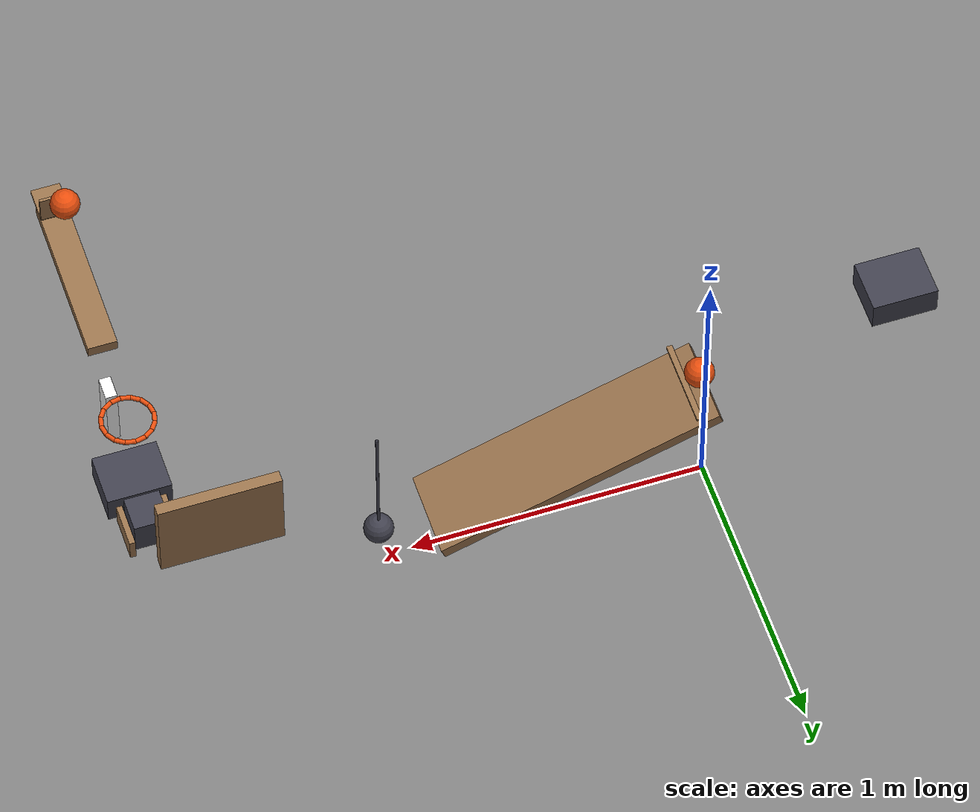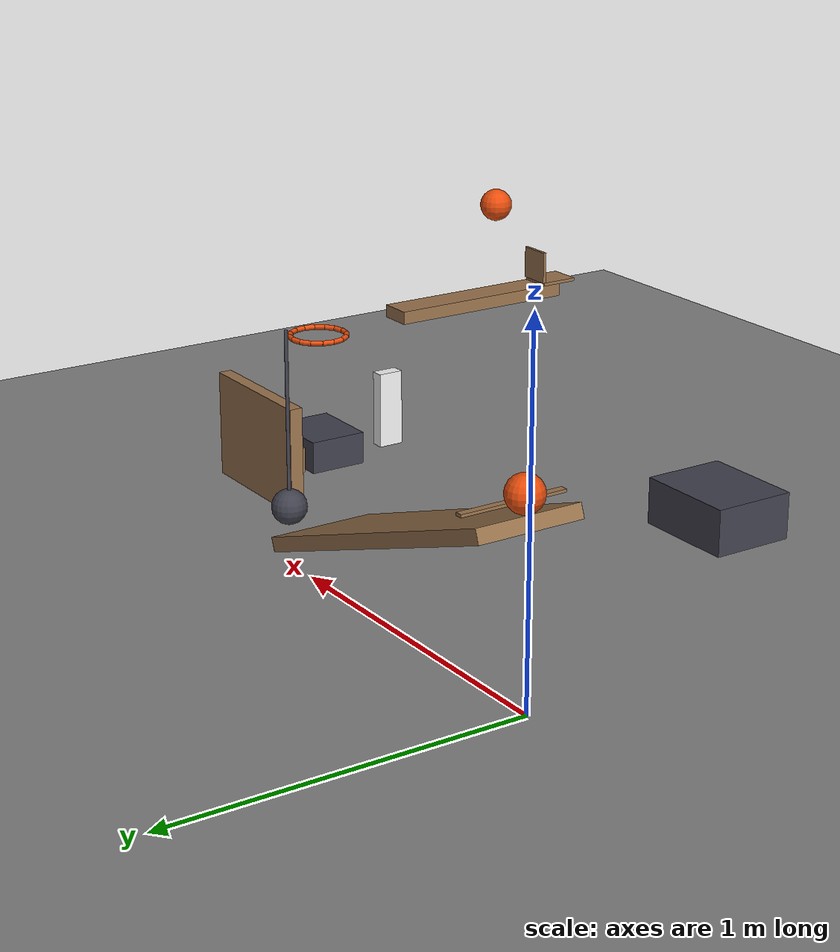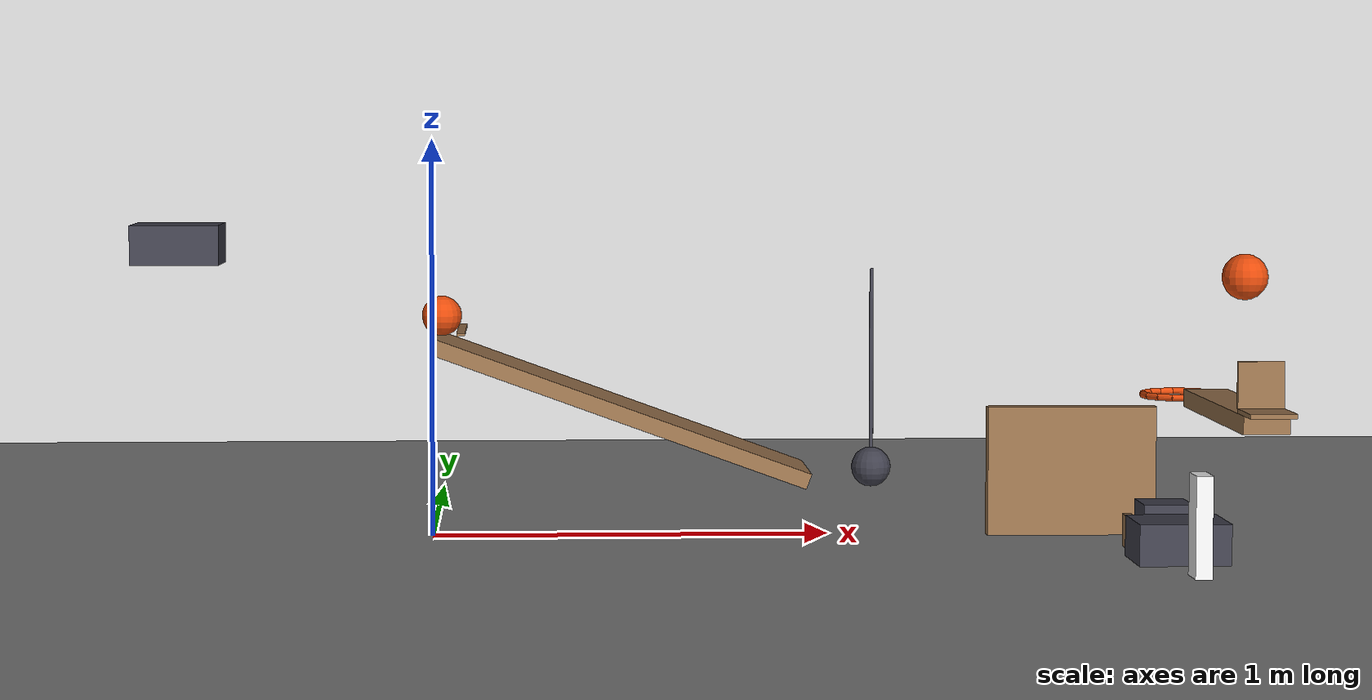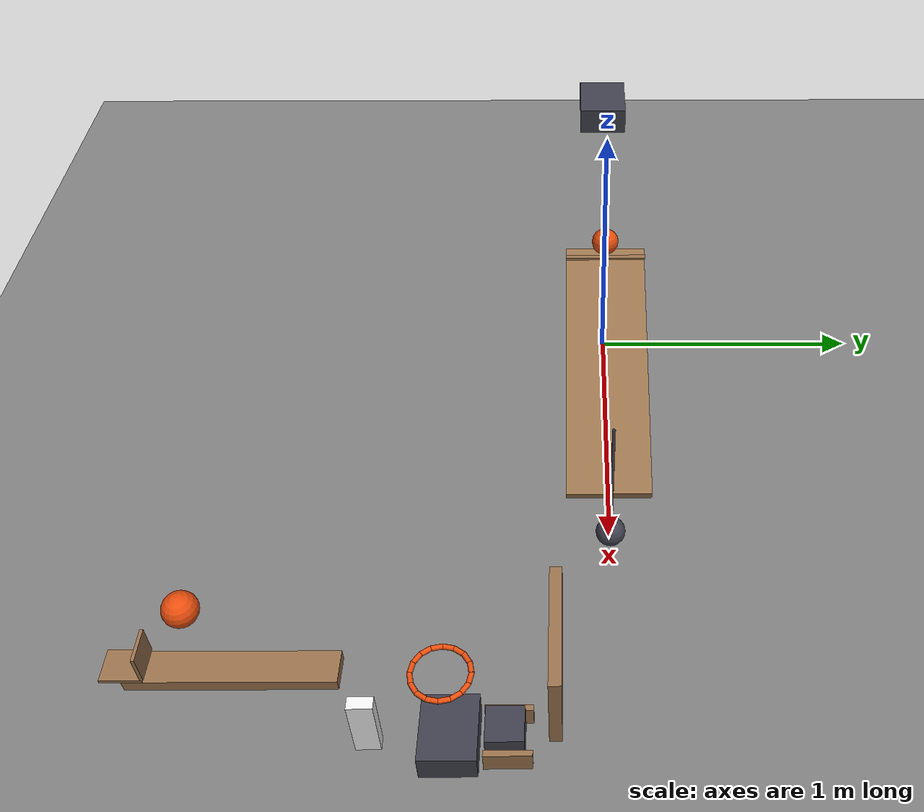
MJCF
<mujoco model="spring_ramp_pendulum_domino_prototype">
  <compiler angle="radian"/>
  <option timestep="0.002"/>
  <worldbody>
    <geom name="floor" type="plane" size="6 6 0.1" friction="0.68 0.005 0.002"/>
    <body name="ramp1">
      <geom name="ramp1" type="box" pos="0.469847 0 0.32101" size="0.5 0.15 0.02" euler="0 0.349066 0" friction="0.68 0.005 0.002" solref="0.01 1" rgba="0.6 0.45 0.3 1"/>
    </body>
    <body name="cart1" pos="-34.8381 0 -93.2295">
      <joint name="cart1_axial_guide" type="hinge" pos="0 0 0" axis="0 1 0" limited="true" range="0 0.0174533" stiffness="180000" springref="0.00200001" damping="2000"/>
      <geom name="cart1" type="box" pos="34.202 0 93.9693" size="0.11 0.09 0.05" mass="0.5" friction="0.68 0.005 0.002" solref="0.01 1" rgba="0.25 0.25 0.3 1"/>
    </body>
    <body name="ball1" pos="0.0239414 0 0.557798">
      <freejoint/>
      <geom name="ball1" type="sphere" pos="0 0 0" size="0.05" mass="0.2" condim="6" friction="0.68 0.005 0.002" solref="0.01 1" rgba="0.9 0.3 0.05 1"/>
    </body>
    <body name="ball1 retaining lip">
      <geom name="ball1 retaining lip" type="box" pos="0.074 0 0.521" size="0.01 0.15 0.004" friction="0.68 0.005 0.0001" solref="0.01 1" rgba="0.6 0.45 0.3 1"/>
    </body>
    <body name="pendulum1" pos="1.11 0 0.67">
      <joint name="pendulum1_hinge" type="hinge" pos="0 0 0" axis="0 1 0" limited="true" range="-0.698132 0" damping="0.04"/>
      <geom name="pendulum1" type="sphere" pos="0 0 -0.5" size="0.05" mass="0.05" friction="0.68 0.005 0.0001" solref="0.01 1" rgba="0.25 0.25 0.3 1"/>
      <geom name="pendulum rod" type="capsule" size="0.005" fromto="0 0 0 0 0 -0.45" mass="0.3" friction="0.68 0.005 0.0001" solref="0.01 1" rgba="0.25 0.25 0.3 1"/>
    </body>
    <body name="door1" pos="1.38 -0.181865 0.18">
      <joint name="door1_hinge" type="hinge" pos="0 0 0" axis="0 0 1" limited="true" range="-0.174533 1.0472" stiffness="8" springref="-0.174533" damping="0.04"/>
      <geom name="door1" type="box" pos="0.21 0 0" size="0.21 0.02 0.16" mass="0.45" friction="0.68 0.005 0.0001" solref="0.01 1" rgba="0.6 0.45 0.3 1"/>
    </body>
    <body name="block1" pos="1.79362 -0.33449 0.06">
      <freejoint/>
      <geom name="block1" type="box" pos="0 0 0" size="0.06 0.06 0.06" mass="0.35" friction="0.68 0.005 0.002" solref="0.01 1" rgba="0.25 0.25 0.3 1"/>
    </body>
    <body name="block guide near">
      <geom name="block guide near" type="box" pos="1.71862 -0.325 0.04" size="0.01 0.075 0.04" friction="0.68 0.005 0.0001" solref="0.01 1" rgba="0.6 0.45 0.3 1"/>
    </body>
    <body name="block guide far">
      <geom name="block guide far" type="box" pos="1.86862 -0.325 0.04" size="0.01 0.075 0.04" friction="0.68 0.005 0.0001" solref="0.01 1" rgba="0.6 0.45 0.3 1"/>
    </body>
    <body name="domino1" pos="1.79362 -0.75449 0.12">
      <freejoint/>
      <geom name="domino1" type="box" pos="0 0 0" size="0.02 0.04 0.12" mass="0.25" friction="0.68 0.005 0.002" solref="0.01 1" rgba="0.95 0.95 0.95 1"/>
    </body>
    <body name="lever1" pos="1.79362 -1.08449 0.420192">
      <joint name="lever1_hinge" type="hinge" pos="0 0 0" axis="1 0 0" limited="true" range="-1.8326 -1.0472" damping="0.04"/>
      <geom name="lever1" type="box" pos="0 0 0" size="0.05 0.3 0.02" mass="0.49" friction="0.68 0.005 0.0001" solref="0.01 1" rgba="0.6 0.45 0.3 1"/>
      <geom name="lever tray base" type="box" pos="0 -0.3 0.025" size="0.05 0.06 0.005" mass="0.005" friction="0.68 0.005 0.0001" solref="0.01 1" rgba="0.6 0.45 0.3 1"/>
      <geom name="lever tray inner wall" type="box" pos="0 -0.24 0.08" size="0.05 0.005 0.05" mass="0.005" friction="0.68 0.005 0.0001" solref="0.01 1" rgba="0.6 0.45 0.3 1"/>
    </body>
    <body name="ball2" pos="1.79362 -1.16521 0.72">
      <freejoint/>
      <geom name="ball2" type="sphere" pos="0 0 0" size="0.05" mass="0.2" condim="6" friction="0.68 0.005 0.002" solref="0.01 1" rgba="0.9 0.3 0.05 1"/>
    </body>
    <body name="ring1">
      <geom name="ring1_00" type="capsule" size="0.008" fromto="1.88162 -0.50449 0.4 1.87492 -0.470814 0.4" friction="0.68 0.005 0.0001" solref="0.01 1" rgba="0.9 0.3 0.05 1"/>
      <geom name="ring1_01" type="capsule" size="0.008" fromto="1.87492 -0.470814 0.4 1.85585 -0.442265 0.4" friction="0.68 0.005 0.0001" solref="0.01 1" rgba="0.9 0.3 0.05 1"/>
      <geom name="ring1_02" type="capsule" size="0.008" fromto="1.85585 -0.442265 0.4 1.8273 -0.423189 0.4" friction="0.68 0.005 0.0001" solref="0.01 1" rgba="0.9 0.3 0.05 1"/>
      <geom name="ring1_03" type="capsule" size="0.008" fromto="1.8273 -0.423189 0.4 1.79362 -0.41649 0.4" friction="0.68 0.005 0.0001" solref="0.01 1" rgba="0.9 0.3 0.05 1"/>
      <geom name="ring1_04" type="capsule" size="0.008" fromto="1.79362 -0.41649 0.4 1.75994 -0.423189 0.4" friction="0.68 0.005 0.0001" solref="0.01 1" rgba="0.9 0.3 0.05 1"/>
      <geom name="ring1_05" type="capsule" size="0.008" fromto="1.75994 -0.423189 0.4 1.73139 -0.442265 0.4" friction="0.68 0.005 0.0001" solref="0.01 1" rgba="0.9 0.3 0.05 1"/>
      <geom name="ring1_06" type="capsule" size="0.008" fromto="1.73139 -0.442265 0.4 1.71232 -0.470814 0.4" friction="0.68 0.005 0.0001" solref="0.01 1" rgba="0.9 0.3 0.05 1"/>
      <geom name="ring1_07" type="capsule" size="0.008" fromto="1.71232 -0.470814 0.4 1.70562 -0.50449 0.4" friction="0.68 0.005 0.0001" solref="0.01 1" rgba="0.9 0.3 0.05 1"/>
      <geom name="ring1_08" type="capsule" size="0.008" fromto="1.70562 -0.50449 0.4 1.71232 -0.538166 0.4" friction="0.68 0.005 0.0001" solref="0.01 1" rgba="0.9 0.3 0.05 1"/>
      <geom name="ring1_09" type="capsule" size="0.008" fromto="1.71232 -0.538166 0.4 1.73139 -0.566715 0.4" friction="0.68 0.005 0.0001" solref="0.01 1" rgba="0.9 0.3 0.05 1"/>
      <geom name="ring1_10" type="capsule" size="0.008" fromto="1.73139 -0.566715 0.4 1.75994 -0.585791 0.4" friction="0.68 0.005 0.0001" solref="0.01 1" rgba="0.9 0.3 0.05 1"/>
      <geom name="ring1_11" type="capsule" size="0.008" fromto="1.75994 -0.585791 0.4 1.79362 -0.59249 0.4" friction="0.68 0.005 0.0001" solref="0.01 1" rgba="0.9 0.3 0.05 1"/>
      <geom name="ring1_12" type="capsule" size="0.008" fromto="1.79362 -0.59249 0.4 1.8273 -0.585791 0.4" friction="0.68 0.005 0.0001" solref="0.01 1" rgba="0.9 0.3 0.05 1"/>
      <geom name="ring1_13" type="capsule" size="0.008" fromto="1.8273 -0.585791 0.4 1.85585 -0.566715 0.4" friction="0.68 0.005 0.0001" solref="0.01 1" rgba="0.9 0.3 0.05 1"/>
      <geom name="ring1_14" type="capsule" size="0.008" fromto="1.85585 -0.566715 0.4 1.87492 -0.538166 0.4" friction="0.68 0.005 0.0001" solref="0.01 1" rgba="0.9 0.3 0.05 1"/>
      <geom name="ring1_15" type="capsule" size="0.008" fromto="1.87492 -0.538166 0.4 1.88162 -0.50449 0.4" friction="0.68 0.005 0.0001" solref="0.01 1" rgba="0.9 0.3 0.05 1"/>
    </body>
    <body name="cart2" pos="1.79362 99.4955 0.05">
      <joint name="cart2_axial_guide" type="hinge" pos="0 0 0" axis="0 0 1" limited="true" range="-0.010472 0.010472" damping="2000"/>
      <geom name="cart2" type="box" pos="0 -100 0" size="0.11 0.09 0.05" mass="0.5" friction="0.68 0.005 0.002" solref="0.01 1" rgba="0.25 0.25 0.3 1"/>
    </body>
  </worldbody>
  <keyframe>
    <key name="start" qpos="0 0.0239414 0 0.557798 1 0 0 0 0 1.0472 1.79362 -0.33449 0.06 1 0 0 0 1.79362 -0.75449 0.12 1 0 0 0 -1.0472 1.79362 -1.16521 0.72 1 0 0 0 0" qvel="0 0 0 0 0 0 0 0 0 0 0 0 0 0 0 0 0 0 0 0 0 0 0 0 0 0 0 0 0"/>
  </keyframe>
</mujoco>
